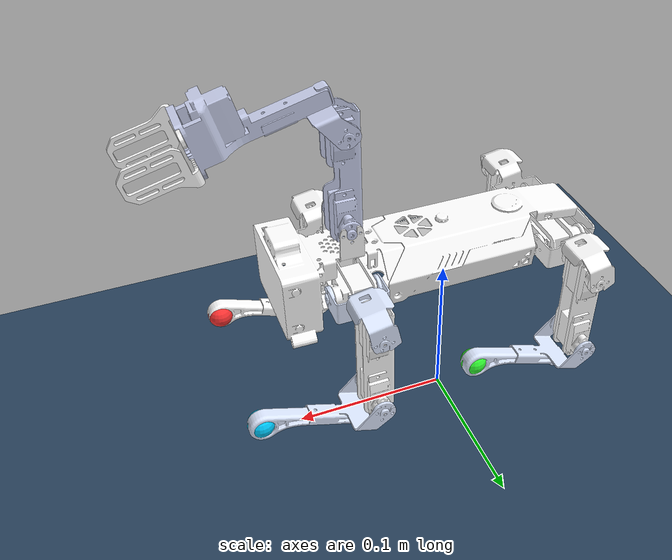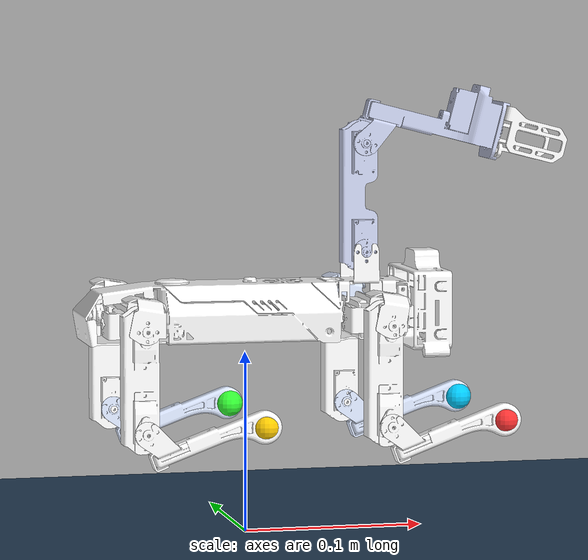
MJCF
<?xml version="1.0" encoding="UTF-8"?>
<mujoco model="lite3_scene">
  <include file="lite3.xml"/>

  <visual>
    <headlight diffuse="0.6 0.6 0.6" ambient="0.3 0.3 0.3" specular="0 0 0"/>
    <rgba haze="0.15 0.25 0.35 1"/>
    <global azimuth="160" elevation="-20"/>
  </visual>

  <asset>
    <texture type="skybox" builtin="gradient" rgb1="0.3 0.5 0.7" rgb2="0 0 0" width="512" height="3072"/>
    <texture type="2d" name="groundplane" builtin="checker" mark="edge" rgb1="0.2 0.3 0.4"
        rgb2="0.1 0.2 0.3" markrgb="0.8 0.8 0.8" width="300" height="300"/>
    <material name="groundplane" texture="groundplane" texuniform="true" texrepeat="1 1" reflectance="0.2"/>
  </asset>

  <worldbody>
    <light pos="0 0 1.5" dir="0 0 -1" directional="true"/>
    <geom name="floor" size="0 0 0.05" type="plane" material="groundplane" contype="2" conaffinity="1"/>
  </worldbody>
</mujoco>

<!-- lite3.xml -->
<mujoco model="lite3">
  <compiler angle="radian" meshdir="assets" autolimits="true"/>

  <option gravity="0 0 -9.81" integrator="RK4"/>

  <default>
    <default class="robot">
      <joint frictionloss="0.0001" armature="0.0005"/>
      <position kp="0.0" dampratio="0.0"/>
      <default class="visual">
        <geom type="mesh" contype="0" conaffinity="0" group="2" density="0"/>
      </default>

      <default class="collision">
        <geom type="mesh" contype="1" conaffinity="0" group="3" density="0"/>
      </default>
    </default>
  </default>

  <default>
    <geom contype="1" conaffinity="2"/>
    <joint damping="0.04" frictionloss="0.0001" armature="0.0025"/>

    <default class="servo">
      <geom contype="1" conaffinity="0" condim="1" />
      <joint damping="0.08" frictionloss="0.001" armature="0.0025" />
      <position kp="0.8" kv="0.0" forcerange="-0.31 0.31" ctrlrange="-1.57 1.57" />
    </default>
  </default>

  <asset>
    <mesh name="body" file="body.STL"/>
    <mesh name="mainarm" file="mainarm.STL"/>
    <mesh name="forearm" file="forearm.STL"/>
    <mesh name="L_calw" file="L_calw.STL"/>
    <mesh name="R_claw" file="R_claw.STL"/>
    <mesh name="FR_hip" file="FR_hip.STL"/>
    <mesh name="FR_thigh" file="FR_thigh.STL"/>
    <mesh name="FR_shank" file="FR_shank.STL"/>
    <mesh name="FL_hip" file="FL_hip.STL"/>
    <mesh name="FL_thigh" file="FL_thigh.STL"/>
    <mesh name="FL_shank" file="FL_shank.STL"/>
    <mesh name="RR_hip" file="RR_hip.STL"/>
    <mesh name="RR_thigh" file="RR_thigh.STL"/>
    <mesh name="RR_shank" file="RR_shank.STL"/>
    <mesh name="RL_hip" file="RL_hip.STL"/>
    <mesh name="RL_thigh" file="RL_thigh.STL"/>
    <mesh name="RL_shank" file="RL_shank.STL"/>
  </asset>

  <sensor>
    <framequat name="orientation" objtype="site" noise="0.001" objname="imu"/>
    <gyro name="angular-velocity" site="imu" noise="0.005"/>
    <gyro name="imu_ang_vel" site="imu"/>
    <velocimeter name="imu_lin_vel" site="imu"/>
    <accelerometer name="imu_accel" site="imu"/>
    <subtreeangmom name="root_angmom" body="body"/>
  </sensor>

  <worldbody>
    <body name="body" pos="0 0 0.12" quat="1 0 0 0" childclass="robot">
      <freejoint name="floating_base"/>
      <inertial pos="0.0089518 -2.6845e-05 0.0018147" quat="0.999995 0.000675 0.00221 0" mass="0.15" diaginertia="3.335e-05 0.00011701 0.00013517"/>
      <geom name="body_visual" class="visual" mesh="body" rgba="1 1 1 1"/>
      <geom name="body_collision" class="collision" mesh="body" rgba="1 1 1 0.5"/>
      <site name="imu" pos="0 0 0" quat="1 0 0 0"/>

      <body name="FL_hip" pos="0.08385 0.0225 0">
        <inertial pos="-0.016365 0.019585 0.0038725" quat="0.41782 0.545293 -0.594921 0.417314" mass="0.005" diaginertia="1.50573e-06 1.23571e-06 6.88773e-07"/>
        <joint name="FL_hip_joint" class="servo" axis="-1 0 0" range="-0.9 0.6"  actuatorfrcrange="-0.37 0.37"/>
        <geom name="FL_hip_visual" class="visual" mesh="FL_hip" rgba="0.86667 0.9098 1 1"/>
        <geom name="FL_hip_collision" class="collision" mesh="FL_hip" rgba="0.86667 0.9098 1 0.5"/>

        <body name="FL_thigh" pos="-0.0169 0.047399 0">
          <inertial pos="-0.0027306 -0.017449 -0.027452" quat="0.706502 -3.34354e-05 -3.53893e-05 0.707711" mass="0.026" diaginertia="3.2628e-06 3.1113e-06 5.3399e-07"/>
          <joint name="FL_thigh_joint" class="servo"  axis="0 1 0" range="-1.43 1.76"  actuatorfrcrange="-0.37 0.37"/>
          <geom name="FL_thigh_visual" class="visual" mesh="FL_thigh" rgba="1 1 1 1"/>
          <geom name="FL_thigh_collision" class="collision" mesh="FL_thigh" rgba="1 1 1 0.5"/>

          <body name="FL_shank" pos="0 0 -0.0549">
            <inertial pos="0.027208 -0.018103 -0.0051257" quat="-0.0100994 0.615643 -0.0154906 0.787808" mass="0.01" diaginertia="3.14517e-06 2.92276e-06 5.83858e-07"/>
            <joint name="FL_shank_joint" class="servo" axis="0 -1 0" range="-2.26 1.3"  actuatorfrcrange="-0.37 0.37"/>
            <geom name="FL_shank_visual" class="visual" mesh="FL_shank" rgba="0.86667 0.9098 1 1"/>
            <geom name="FL_shank_collision" class="collision" mesh="FL_shank" rgba="0.86667 0.9098 1 0.5"/>
            <site name="FL" pos="0.068 -0.02 -0.0" type="sphere" size="0.008" rgba="0 0.8 1 1" group="2" />

          </body>
        </body>
      </body>

      <body name="FR_hip" pos="0.08385 -0.0225 0">
        <inertial pos="-0.016365 -0.019585 0.0038725" quat="0.545293 0.41782 -0.417314 0.594921" mass="0.005" diaginertia="1.50573e-06 1.23571e-06 6.88773e-07"/>
        <joint name="FR_hip_joint" class="servo" axis="-1 0 0" range="-0.6 0.9"  actuatorfrcrange="-0.37 0.37"/>
        <geom name="FR_hip_visual" class="visual" mesh="FR_hip" rgba="1 1 1 1"/>
        <geom name="FR_hip_collision" class="collision" mesh="FR_hip" rgba="1 1 1 0.5"/>

        <body name="FR_thigh" pos="-0.0169 -0.047399 0">
          <inertial pos="-0.0027307 0.017449 -0.027452" quat="0.707708 -3.60834e-05 -3.4327e-05 0.706505" mass="0.026" diaginertia="3.2628e-06 3.1113e-06 5.3399e-07"/>
          <joint name="FR_thigh_joint" class="servo" axis="0 1 0" range="-1.43 1.76"  actuatorfrcrange="-0.37 0.37"/>
          <geom name="FR_thigh_visual" class="visual" mesh="FR_thigh" rgba="1 1 1 1"/>
          <geom name="FR_thigh_collision" class="collision" mesh="FR_thigh" rgba="1 1 1 0.5"/>

          <body name="FR_shank" pos="0 0 -0.0549">
            <inertial pos="0.027207 0.018103 -0.0051258" quat="0.0100993 0.615643 0.0154903 0.787808" mass="0.01" diaginertia="3.14517e-06 2.92276e-06 5.83858e-07"/>
            <joint name="FR_shank_joint" class="servo" axis="0 -1 0" range="-2.26 1.3"  actuatorfrcrange="-0.37 0.37"/>
            <geom name="FR_shank_visual" class="visual" mesh="FR_shank" rgba="1 1 1 1"/>
            <geom name="FR_shank_collision" class="collision" mesh="FR_shank" rgba="1 1 1 0.5"/>
            <site name="FR" pos="0.068 0.02 -0.0" type="sphere" size="0.008" rgba="1 0.2 0.2 1" group="2" />

          </body>
        </body>
      </body>

      <body name="RR_hip" pos="-0.08385 -0.0225 0">
        <inertial pos="0.017318 -0.019585 0.0038725" quat="0.545293 0.41782 -0.417314 0.594921" mass="0.005" diaginertia="1.50573e-06 1.23571e-06 6.88773e-07"/>
        <joint name="RR_hip_joint" class="servo" axis="-1 0 0" range="-0.6 0.9"  actuatorfrcrange="-0.37 0.37"/>
        <geom name="RR_hip_visual" class="visual" mesh="RR_hip" rgba="1 1 1 1"/>
        <geom name="RR_hip_collision" class="collision" mesh="RR_hip" rgba="1 1 1 0.5"/>

        <body name="RR_thigh" pos="0.0169 -0.047399 0">
          <inertial pos="-0.0027307 0.017449 -0.027452" quat="0.707708 -3.60832e-05 -3.43271e-05 0.706505" mass="0.026" diaginertia="3.2628e-06 3.1113e-06 5.3399e-07"/>
          <joint name="RR_thigh_joint" class="servo" axis="0 1 0" range="-1.43 1.76"  actuatorfrcrange="-0.37 0.37"/>
          <geom name="RR_thigh_visual" class="visual" mesh="RR_thigh" rgba="1 1 1 1"/>
          <geom name="RR_thigh_collision" class="collision" mesh="RR_thigh" rgba="1 1 1 0.5"/>

          <body name="RR_shank" pos="0 0 -0.0549">
            <inertial pos="0.027208 0.018103 -0.0051258" quat="0.0101 0.615643 0.0154908 0.787808" mass="0.01" diaginertia="3.14517e-06 2.92276e-06 5.83858e-07"/>
            <joint name="RR_shank_joint" class="servo" axis="0 -1 0" range="-2.26 1.3"  actuatorfrcrange="-0.37 0.37"/>
            <geom name="RR_shank_visual" class="visual" mesh="RR_shank" rgba="1 1 1 1"/>
            <geom name="RR_shank_collision" class="collision" mesh="RR_shank" rgba="1 1 1 0.5"/>
            <site name="RR" pos="0.068 0.02 -0.0" type="sphere" size="0.008" rgba="1 0.8 0 1" group="2" />

          </body>
        </body>
      </body>

      <body name="RL_hip" pos="-0.08385 0.0225 0">
        <inertial pos="0.017318 0.019585 0.0038725" quat="0.41782 0.545293 -0.594921 0.417314" mass="0.005" diaginertia="1.50573e-06 1.23571e-06 6.88773e-07"/>
        <joint name="RL_hip_joint" class="servo" axis="-1 0 0" range="-0.9 0.6"  actuatorfrcrange="-0.37 0.37"/>
        <geom name="RL_hip_visual" class="visual" mesh="RL_hip" rgba="1 1 1 1"/>
        <geom name="RL_hip_collision" class="collision" mesh="RL_hip" rgba="1 1 1 0.5"/>

        <body name="RL_thigh" pos="0.0169 0.047399 0">
          <inertial pos="-0.0027306 -0.017449 -0.027452" quat="0.706502 -3.34309e-05 -3.53856e-05 0.707711" mass="0.026" diaginertia="3.2628e-06 3.1113e-06 5.3399e-07"/>
          <joint name="RL_thigh_joint" class="servo" axis="0 1 0" range="-1.43 1.76"  actuatorfrcrange="-0.37 0.37"/>
          <geom name="RL_thigh_visual" class="visual" mesh="RL_thigh" rgba="1 1 1 1"/>
          <geom name="RL_thigh_collision" class="collision" mesh="RL_thigh" rgba="1 1 1 0.5"/>

          <body name="RL_shank" pos="0 0 -0.0549">
            <inertial pos="0.027208 -0.018103 -0.0051257" quat="-0.0101 0.615643 -0.015491 0.787808" mass="0.01" diaginertia="3.14517e-06 2.92276e-06 5.83858e-07"/>
            <joint name="RL_shank_joint" class="servo" axis="0 -1 0" range="-2.26 1.3"  actuatorfrcrange="-0.37 0.37"/>
            <geom name="RL_shank_visual" class="visual" mesh="RL_shank" rgba="0.86667 0.9098 1 1"/>
            <geom name="RL_shank_collision" class="collision" mesh="RL_shank" rgba="0.86667 0.9098 1 0.5"/>
            <site name="RL" pos="0.068 -0.02 -0.0" type="sphere" size="0.008" rgba="0.2 1 0.2 1" group="2" />

          </body>
        </body>
      </body>

      <body name="mainarm" pos="0.065016 -0.00075 0.03519">
        <inertial pos="-0.0023546 0.0010091 0.026309" quat="0.706752 -4.95037e-05 -4.49786e-05 0.707462" mass="0.015" diaginertia="3.7087e-06 3.5044e-06 4.855e-07"/>
        <joint name="mainarm_joint" class="servo" axis="0 1 0" range="-1.6 1.3"  actuatorfrcrange="-0.37 0.37"/>
        <geom name="mainarm_visual" class="visual" mesh="mainarm" rgba="0.79216 0.81961 0.93333 1"/>
        <geom name="mainarm_collision" class="collision" mesh="mainarm" rgba="0.79216 0.81961 0.93333 0.5"/>

        <body name="forearm" pos="0 0 0.0599">
          <inertial pos="0.041203 0.0007728 0.0094318" quat="0.785877 0.0451401 -0.250836 0.563419" mass="0.01" diaginertia="5.0462e-06 5.0084e-06 1.5649e-06"/>
          <joint name="forearm_joint" class="servo" axis="0 1 0" range="-1.47 1.3"  actuatorfrcrange="-0.37 0.37"/>
          <geom name="forearm_visual" class="visual" mesh="forearm" rgba="0.79216 0.81961 0.93333 1"/>
          <geom name="forearm_collision" class="collision" mesh="forearm" rgba="0.79216 0.81961 0.93333 0.5"/>

          <body name="L_calw" pos="0.097841 0 -4.8373e-05">
            <inertial pos="-0.0095549 0.011982 -0.0016877" quat="0.707107 0 0 0.707107" mass="0.003" diaginertia="2.6534e-07 2.117e-07 1.379e-07"/>
            <geom name="L_calw_visual" class="visual" mesh="L_calw" rgba="1 1 1 1"/>
            <geom name="L_calw_collision" class="collision" mesh="L_calw" rgba="1 1 1 0.5"/>
          </body>

          <body name="R_claw" pos="0.097841 0 -4.8373e-05">
            <inertial pos="-0.0075056 -0.010482 0.006149" quat="0.707107 0 0 0.707107" mass="0.003" diaginertia="2.1809e-07 2.117e-07 1.8515e-07"/>
            <geom name="R_claw_visual" class="visual" mesh="R_claw" rgba="1 1 1 1"/>
            <geom name="R_claw_collision" class="collision" mesh="R_claw" rgba="1 1 1 0.5"/>
          </body>
        </body>
      </body>

    </body>
  </worldbody>

  <actuator>
    <position class="servo" name="mainarm_joint" joint="mainarm_joint"/>
    <position class="servo" name="forearm_joint" joint="forearm_joint"/>
    <position class="servo" name="FR_hip_joint" joint="FR_hip_joint"/>
    <position class="servo" name="FR_thigh_joint" joint="FR_thigh_joint"/>
    <position class="servo" name="FR_shank_joint" joint="FR_shank_joint"/>
    <position class="servo" name="FL_hip_joint" joint="FL_hip_joint"/>
    <position class="servo" name="FL_thigh_joint" joint="FL_thigh_joint"/>
    <position class="servo" name="FL_shank_joint" joint="FL_shank_joint"/>
    <position class="servo" name="RR_hip_joint" joint="RR_hip_joint"/>
    <position class="servo" name="RR_thigh_joint" joint="RR_thigh_joint"/>
    <position class="servo" name="RR_shank_joint" joint="RR_shank_joint"/>
    <position class="servo" name="RL_hip_joint" joint="RL_hip_joint"/>
    <position class="servo" name="RL_thigh_joint" joint="RL_thigh_joint"/>
    <position class="servo" name="RL_shank_joint" joint="RL_shank_joint"/>
  </actuator>
</mujoco>
